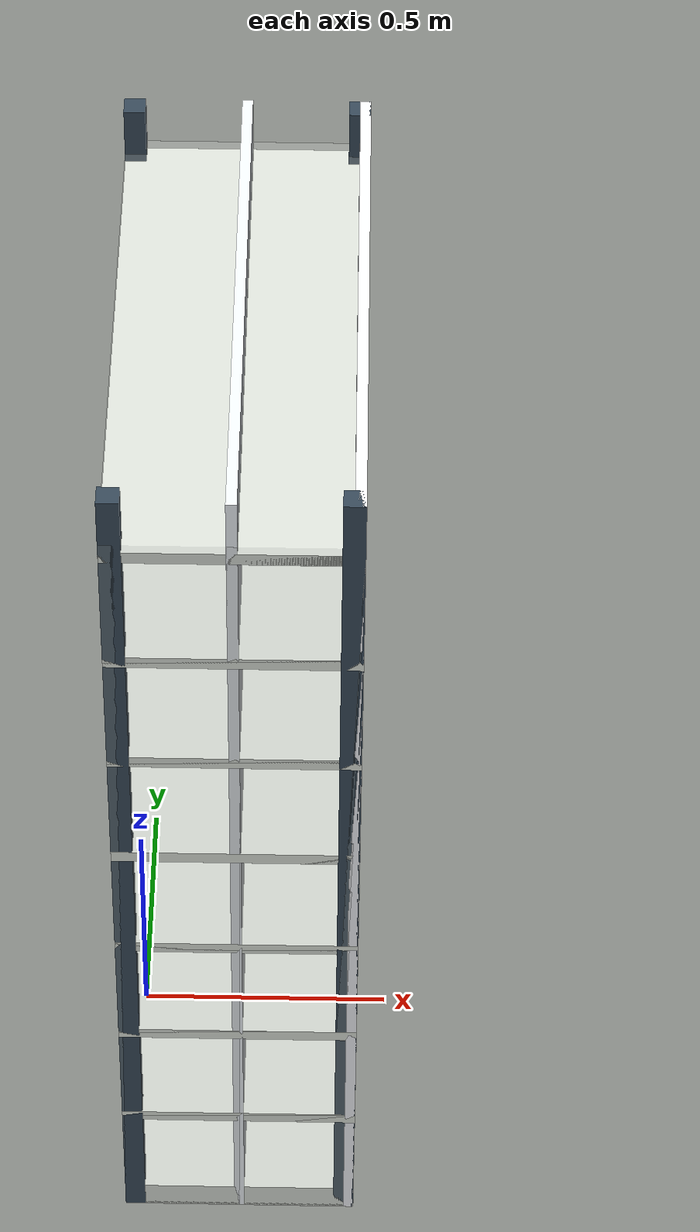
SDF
<?xml version="1.0"?>
<sdf version="1.9">
  <model name="pharmacy_shelf_dense">
    <static>true</static>
    <link name="body">
      <collision name="left_post_collision">
        <pose>0.0 -0.52 0.99 0 0 0</pose>
        <geometry>
          <box>
            <size>0.04 0.04 1.98</size>
          </box>
        </geometry>
      </collision>
      <collision name="right_post_collision">
        <pose>0.0 0.52 0.99 0 0 0</pose>
        <geometry>
          <box>
            <size>0.04 0.04 1.98</size>
          </box>
        </geometry>
      </collision>
      <collision name="rear_left_post_collision">
        <pose>0.42 -0.52 0.99 0 0 0</pose>
        <geometry>
          <box>
            <size>0.04 0.04 1.98</size>
          </box>
        </geometry>
      </collision>
      <collision name="rear_right_post_collision">
        <pose>0.42 0.52 0.99 0 0 0</pose>
        <geometry>
          <box>
            <size>0.04 0.04 1.98</size>
          </box>
        </geometry>
      </collision>
      <collision name="back_panel_collision">
        <pose>0.43 0.0 0.99 0 0 0</pose>
        <geometry>
          <box>
            <size>0.02 1.08 1.98</size>
          </box>
        </geometry>
      </collision>
      <collision name="level_bottom_collision">
        <pose>0.21 0.0 0.03 0 0 0</pose>
        <geometry>
          <box>
            <size>0.46 1.08 0.06</size>
          </box>
        </geometry>
      </collision>
      <collision name="level_1_collision">
        <pose>0.21 0.0 0.29 0 0 0</pose>
        <geometry>
          <box>
            <size>0.46 1.08 0.025</size>
          </box>
        </geometry>
      </collision>
      <collision name="level_2_collision">
        <pose>0.21 0.0 0.55 0 0 0</pose>
        <geometry>
          <box>
            <size>0.46 1.08 0.025</size>
          </box>
        </geometry>
      </collision>
      <collision name="level_3_collision">
        <pose>0.21 0.0 0.81 0 0 0</pose>
        <geometry>
          <box>
            <size>0.46 1.08 0.025</size>
          </box>
        </geometry>
      </collision>
      <collision name="level_4_collision">
        <pose>0.21 0.0 1.07 0 0 0</pose>
        <geometry>
          <box>
            <size>0.46 1.08 0.025</size>
          </box>
        </geometry>
      </collision>
      <collision name="level_5_collision">
        <pose>0.21 0.0 1.33 0 0 0</pose>
        <geometry>
          <box>
            <size>0.46 1.08 0.025</size>
          </box>
        </geometry>
      </collision>
      <collision name="level_6_collision">
        <pose>0.21 0.0 1.59 0 0 0</pose>
        <geometry>
          <box>
            <size>0.46 1.08 0.025</size>
          </box>
        </geometry>
      </collision>
      <collision name="top_collision">
        <pose>0.21 0.0 1.85 0 0 0</pose>
        <geometry>
          <box>
            <size>0.46 1.08 0.025</size>
          </box>
        </geometry>
      </collision>

      <visual name="frame_visual">
        <pose>0.21 0.0 0.99 0 0 0</pose>
        <geometry>
          <box>
            <size>0.02 1.08 1.98</size>
          </box>
        </geometry>
        <material>
          <ambient>0.86 0.88 0.90 1</ambient>
          <diffuse>0.93 0.95 0.97 1</diffuse>
          <specular>0.08 0.08 0.08 1</specular>
        </material>
      </visual>
      <visual name="left_post_visual">
        <pose>0.0 -0.52 0.99 0 0 0</pose>
        <geometry><box><size>0.04 0.04 1.98</size></box></geometry>
        <material><ambient>0.18 0.24 0.29 1</ambient><diffuse>0.21 0.28 0.34 1</diffuse></material>
      </visual>
      <visual name="right_post_visual">
        <pose>0.0 0.52 0.99 0 0 0</pose>
        <geometry><box><size>0.04 0.04 1.98</size></box></geometry>
        <material><ambient>0.18 0.24 0.29 1</ambient><diffuse>0.21 0.28 0.34 1</diffuse></material>
      </visual>
      <visual name="rear_left_post_visual">
        <pose>0.42 -0.52 0.99 0 0 0</pose>
        <geometry><box><size>0.04 0.04 1.98</size></box></geometry>
        <material><ambient>0.18 0.24 0.29 1</ambient><diffuse>0.21 0.28 0.34 1</diffuse></material>
      </visual>
      <visual name="rear_right_post_visual">
        <pose>0.42 0.52 0.99 0 0 0</pose>
        <geometry><box><size>0.04 0.04 1.98</size></box></geometry>
        <material><ambient>0.18 0.24 0.29 1</ambient><diffuse>0.21 0.28 0.34 1</diffuse></material>
      </visual>
      <visual name="back_panel_visual">
        <pose>0.43 0.0 0.99 0 0 0</pose>
        <geometry><box><size>0.02 1.08 1.98</size></box></geometry>
        <material><ambient>0.88 0.90 0.93 1</ambient><diffuse>0.95 0.96 0.98 1</diffuse></material>
      </visual>
      <visual name="boards_visual">
        <pose>0.21 0.0 0.94 0 0 0</pose>
        <geometry>
          <box>
            <size>0.46 1.08 1.88</size>
          </box>
        </geometry>
        <material>
          <ambient>0.78 0.80 0.77 0.15</ambient>
          <diffuse>0.84 0.86 0.83 0.15</diffuse>
        </material>
      </visual>
      <visual name="level_bottom_visual">
        <pose>0.21 0.0 0.03 0 0 0</pose>
        <geometry><box><size>0.46 1.08 0.06</size></box></geometry>
        <material><ambient>0.78 0.80 0.77 1</ambient><diffuse>0.86 0.88 0.85 1</diffuse></material>
      </visual>
      <visual name="level_1_visual">
        <pose>0.21 0.0 0.29 0 0 0</pose>
        <geometry><box><size>0.46 1.08 0.025</size></box></geometry>
        <material><ambient>0.78 0.80 0.77 1</ambient><diffuse>0.86 0.88 0.85 1</diffuse></material>
      </visual>
      <visual name="level_2_visual">
        <pose>0.21 0.0 0.55 0 0 0</pose>
        <geometry><box><size>0.46 1.08 0.025</size></box></geometry>
        <material><ambient>0.78 0.80 0.77 1</ambient><diffuse>0.86 0.88 0.85 1</diffuse></material>
      </visual>
      <visual name="level_3_visual">
        <pose>0.21 0.0 0.81 0 0 0</pose>
        <geometry><box><size>0.46 1.08 0.025</size></box></geometry>
        <material><ambient>0.78 0.80 0.77 1</ambient><diffuse>0.86 0.88 0.85 1</diffuse></material>
      </visual>
      <visual name="level_4_visual">
        <pose>0.21 0.0 1.07 0 0 0</pose>
        <geometry><box><size>0.46 1.08 0.025</size></box></geometry>
        <material><ambient>0.78 0.80 0.77 1</ambient><diffuse>0.86 0.88 0.85 1</diffuse></material>
      </visual>
      <visual name="level_5_visual">
        <pose>0.21 0.0 1.33 0 0 0</pose>
        <geometry><box><size>0.46 1.08 0.025</size></box></geometry>
        <material><ambient>0.78 0.80 0.77 1</ambient><diffuse>0.86 0.88 0.85 1</diffuse></material>
      </visual>
      <visual name="level_6_visual">
        <pose>0.21 0.0 1.59 0 0 0</pose>
        <geometry><box><size>0.46 1.08 0.025</size></box></geometry>
        <material><ambient>0.78 0.80 0.77 1</ambient><diffuse>0.86 0.88 0.85 1</diffuse></material>
      </visual>
      <visual name="top_visual">
        <pose>0.21 0.0 1.85 0 0 0</pose>
        <geometry><box><size>0.46 1.08 0.025</size></box></geometry>
        <material><ambient>0.78 0.80 0.77 1</ambient><diffuse>0.86 0.88 0.85 1</diffuse></material>
      </visual>
    </link>
  </model>
</sdf>
